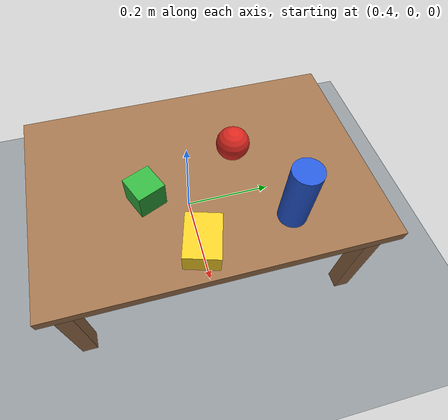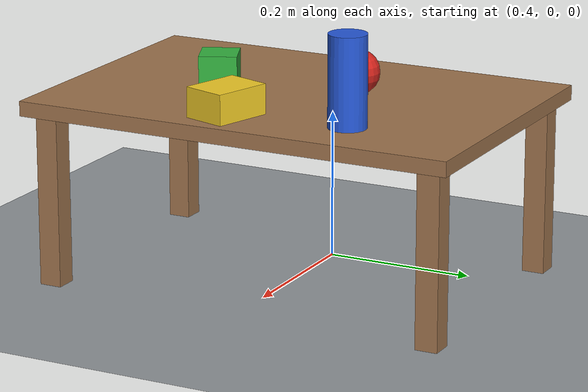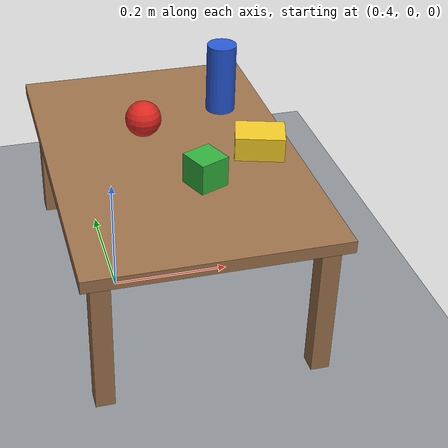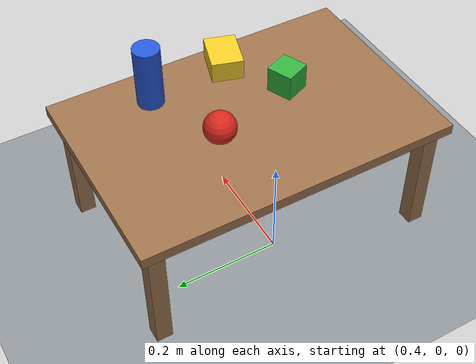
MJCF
<!-- The "table" scene: the empty scene plus a low table with a few objects in front of the robot,
     so the head cameras have something to see. The robot is attached by model.load_world. -->
<mujoco model="table">
  <visual>
    <headlight ambient="0.35 0.35 0.35" diffuse="0.5 0.5 0.5" specular="0.1 0.1 0.1"/>
    <global azimuth="150" elevation="-20"/>
  </visual>

  <asset>
    <texture name="skybox" type="skybox" builtin="gradient" rgb1="0.55 0.65 0.75" rgb2="0.15 0.18 0.22"
             width="512" height="512"/>
    <texture name="checker" type="2d" builtin="checker" rgb1="0.62 0.64 0.66" rgb2="0.5 0.52 0.54"
             width="512" height="512" mark="edge" markrgb="0.45 0.47 0.49"/>
    <material name="floor" texture="checker" texrepeat="8 8" texuniform="true" reflectance="0.1"/>
    <material name="wood" rgba="0.62 0.45 0.3 1"/>
  </asset>

  <worldbody>
    <light name="sun" pos="0 0 3" dir="0 0 -1" directional="true" diffuse="0.6 0.6 0.6"/>
    <geom name="floor" type="plane" size="0 0 0.05" material="floor"/>

    <!-- A table 25 cm high, from 30 to 70 cm in front of the robot: close enough for the bottom
         camera, far enough for the top camera, which looks almost level, to see over its edge. -->
    <body name="table" pos="0.5 0 0">
      <geom name="table_top" type="box" pos="0 0 0.24" size="0.2 0.3 0.01" material="wood"/>
      <geom name="table_leg_fl" type="box" pos="0.17 0.27 0.115" size="0.015 0.015 0.115" material="wood"/>
      <geom name="table_leg_fr" type="box" pos="0.17 -0.27 0.115" size="0.015 0.015 0.115" material="wood"/>
      <geom name="table_leg_rl" type="box" pos="-0.17 0.27 0.115" size="0.015 0.015 0.115" material="wood"/>
      <geom name="table_leg_rr" type="box" pos="-0.17 -0.27 0.115" size="0.015 0.015 0.115" material="wood"/>
    </body>

    <body name="red_ball" pos="0.47 0.07 0.28">
      <geom name="red_ball" type="sphere" size="0.03" rgba="0.85 0.15 0.12 1"/>
    </body>
    <body name="green_cube" pos="0.53 -0.1 0.275">
      <geom name="green_cube" type="box" size="0.025 0.025 0.025" euler="0 0 23" rgba="0.2 0.7 0.25 1"/>
    </body>
    <body name="blue_can" pos="0.62 0.13 0.31">
      <geom name="blue_can" type="cylinder" size="0.025 0.06" rgba="0.15 0.35 0.85 1"/>
    </body>
    <body name="yellow_box" pos="0.64 -0.03 0.27">
      <geom name="yellow_box" type="box" size="0.04 0.03 0.02" euler="0 0 -17" rgba="0.95 0.8 0.15 1"/>
    </body>
  </worldbody>
</mujoco>
